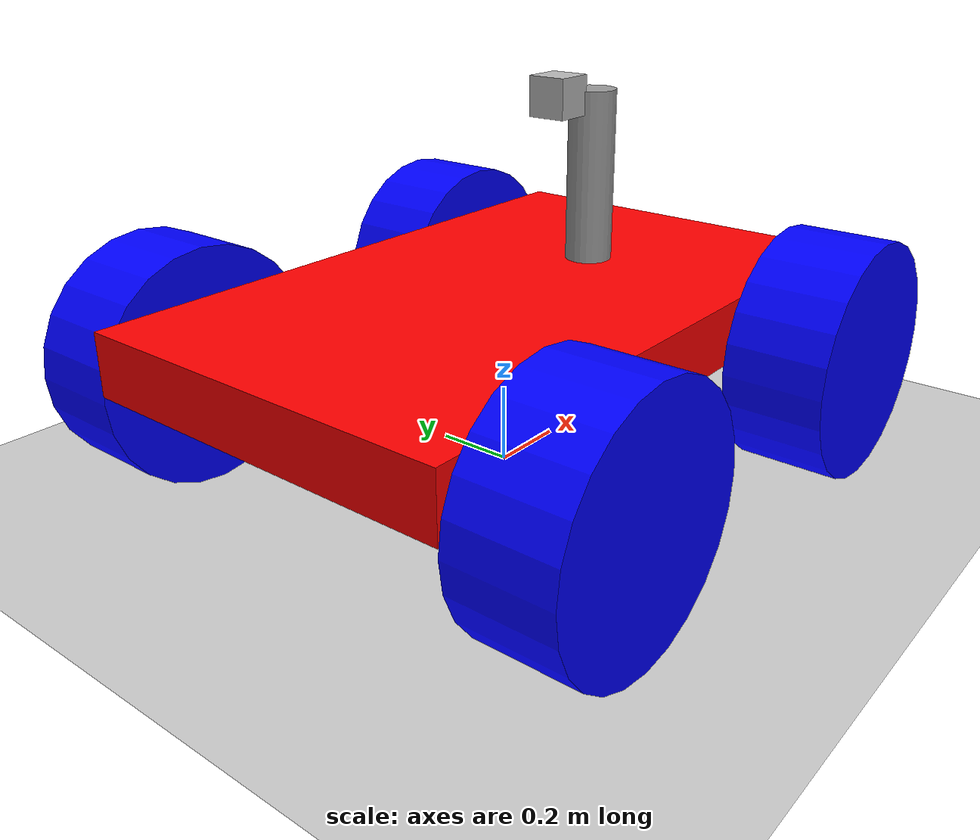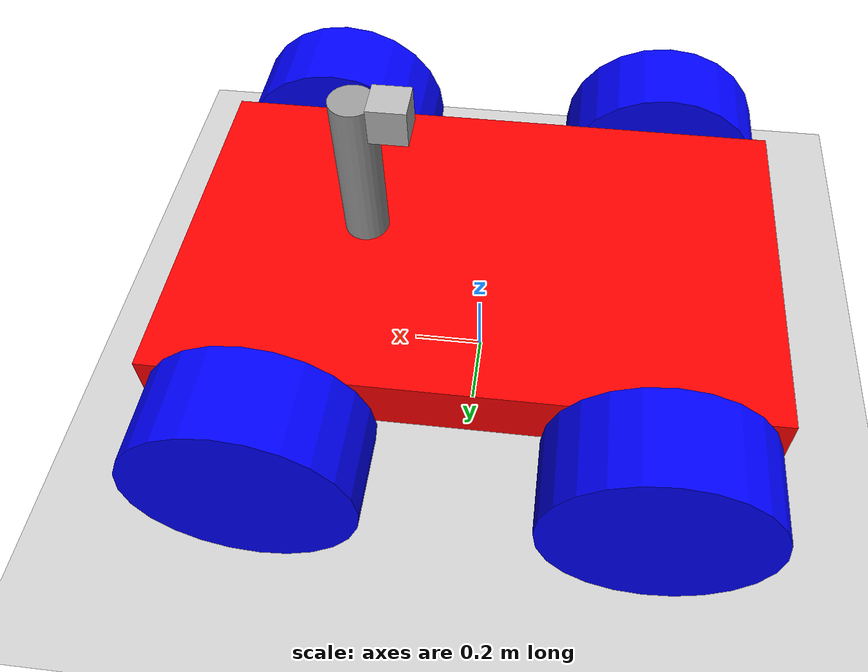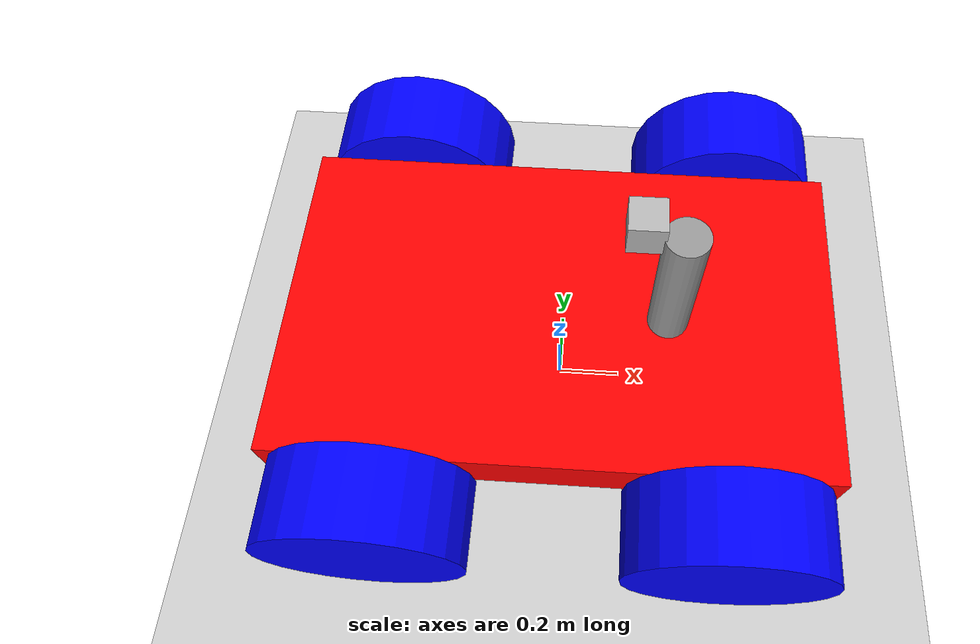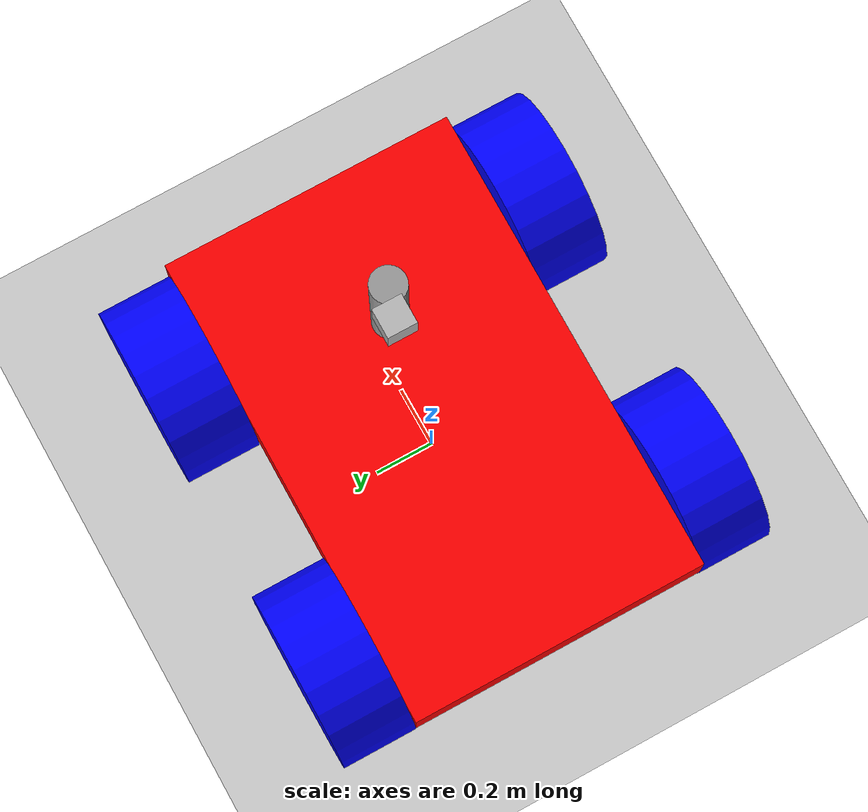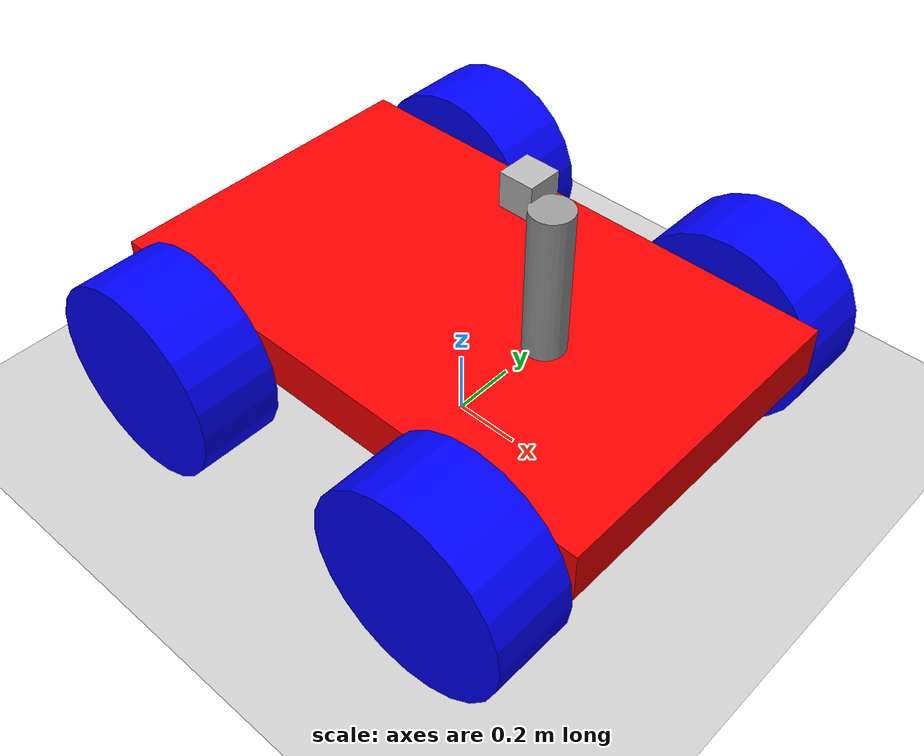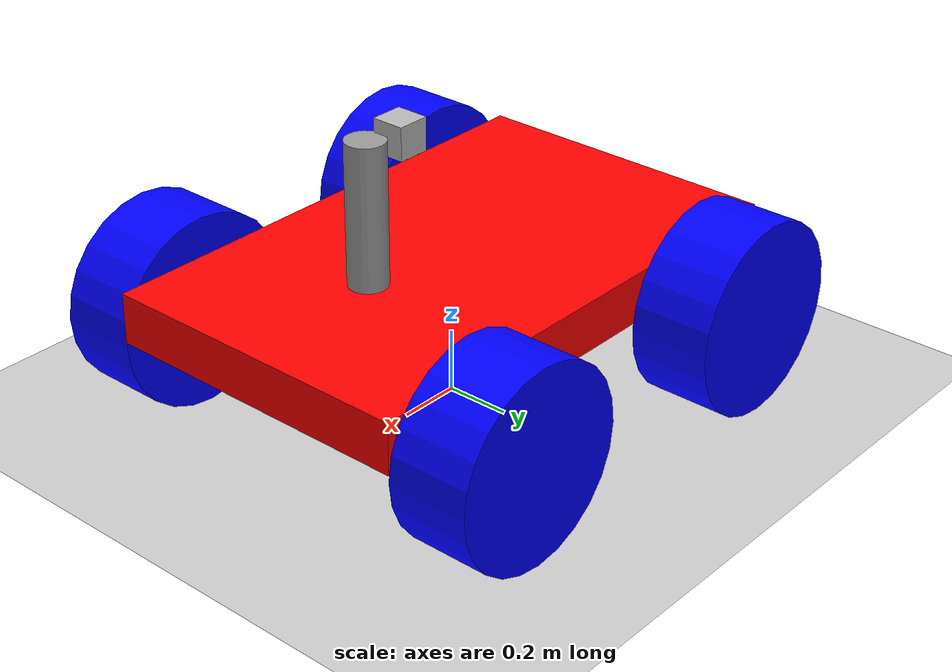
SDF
<?xml version="1.0" ?>
<sdf version="1.8">
    <world name="test_world">
      <physics name="1ms" type="ignored">
    <max_step_size>0.001</max_step_size>
    <real_time_factor>1.0</real_time_factor>
  </physics>
  <plugin
    filename="gz-sim-physics-system"
    name="gz::sim::systems::Physics">
</plugin>
<plugin
    filename="gz-sim-user-commands-system"
    name="gz::sim::systems::UserCommands">
</plugin>
<plugin
    filename="gz-sim-scene-broadcaster-system"
    name="gz::sim::systems::SceneBroadcaster">
</plugin>

<gui fullscreen="0">
  <!-- 3D scene -->
<plugin filename="MinimalScene" name="3D View">
  <gz-gui>
    <title>3D View</title>
    <property type="bool" key="showTitleBar">false</property>
    <property type="string" key="state">docked</property>
  </gz-gui>

  <engine>ogre2</engine>
  <scene>scene</scene>
  <ambient_light>0.4 0.4 0.4</ambient_light>
  <background_color>0.8 0.8 0.8</background_color>
  <camera_pose>-6 0 6 0 0.5 0</camera_pose>
  <camera_clip>
    <near>0.25</near>
    <far>25000</far>
  </camera_clip>
</plugin>
<plugin filename="GzSceneManager" name="Scene Manager">
  <gz-gui>
    <property key="resizable" type="bool">false</property>
    <property key="width" type="double">5</property>
    <property key="height" type="double">5</property>
    <property key="state" type="string">floating</property>
    <property key="showTitleBar" type="bool">false</property>
  </gz-gui>
</plugin>
<plugin filename="WorldControl" name="World control">
    <gz-gui>
        <title>World control</title>
        <property type="bool" key="showTitleBar">false</property>
        <property type="bool" key="resizable">false</property>
        <property type="double" key="height">72</property>
        <property type="double" key="width">121</property>
        <property type="double" key="z">1</property>

        <property type="string" key="state">floating</property>
        <anchors target="3D View">
        <line own="left" target="left"/>
        <line own="bottom" target="bottom"/>
        </anchors>
    </gz-gui>

    <play_pause>true</play_pause>
    <step>true</step>
    <start_paused>true</start_paused>
    <service>/world/world_demo/control</service>
    <stats_topic>/world/world_demo/stats</stats_topic>
</plugin>
<plugin filename="WorldStats" name="World stats">
    <gz-gui>
        <title>World stats</title>
        <property type="bool" key="showTitleBar">false</property>
        <property type="bool" key="resizable">false</property>
        <property type="double" key="height">110</property>
        <property type="double" key="width">290</property>
        <property type="double" key="z">1</property>

        <property type="string" key="state">floating</property>
        <anchors target="3D View">
        <line own="right" target="right"/>
        <line own="bottom" target="bottom"/>
        </anchors>
    </gz-gui>

    <sim_time>true</sim_time>
    <real_time>true</real_time>
    <real_time_factor>true</real_time_factor>
    <iterations>true</iterations>
    <topic>/world/world_demo/stats</topic>

</plugin>
<!-- Entity tree -->
<plugin filename="EntityTree" name="Entity tree">
</plugin>
</gui>
<light type="directional" name="sun">
    <cast_shadows>true</cast_shadows>
    <pose>0 0 10 0 0 0</pose>
    <diffuse>0.8 0.8 0.8 1</diffuse>
    <specular>0.2 0.2 0.2 1</specular>
    <attenuation>
        <range>1000</range>
        <constant>0.9</constant>
        <linear>0.01</linear>
        <quadratic>0.001</quadratic>
    </attenuation>
    <direction>-0.5 0.1 -0.9</direction>
</light>
<include>
    <uri>file:///home/md/Workspaces/gazebo_project/models/ground_plane</uri>
</include>
<include>
    <uri>file:///home/md/Workspaces/gazebo_project/models/four_wheel_car</uri>
</include>
    </world>
</sdf>

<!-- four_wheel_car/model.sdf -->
<sdf version='1.7'>
  <model name='four_wheel_car'>
    <link name='link_0'>
      <inertial>
        <mass>8.20503</mass>
        <inertia>
          <ixx>0.263679</ixx>
          <ixy>0</ixy>
          <ixz>0</ixz>
          <iyy>0.263679</iyy>
          <iyz>0</iyz>
          <izz>0.0148963</izz>
        </inertia>
        <pose>0 0 0 0 -0 0</pose>
      </inertial>
      <pose>0.31891 -0.030085 0.611482 -2e-06 1e-06 0.000383</pose>
      <self_collide>0</self_collide>
      <enable_wind>0</enable_wind>
      <kinematic>0</kinematic>
      <gravity>1</gravity>
      <visual name='visual'>
        <pose>0 0 0 0 -0 0</pose>
        <geometry>
          <cylinder>
            <radius>0.0602579</radius>
            <length>0.612162</length>
          </cylinder>
        </geometry>
        <material>
          <lighting>1</lighting>
          <script>
            <uri>file://media/materials/scripts/gazebo.material</uri>
            <name>Gazebo/Grey</name>
          </script>
          <shader type='pixel'>
            <normal_map>__default__</normal_map>
          </shader>
          <emissive>0 0 0 1</emissive>
        </material>
        <transparency>0</transparency>
        <cast_shadows>1</cast_shadows>
      </visual>
      <collision name='collision'>
        <laser_retro>0</laser_retro>
        <max_contacts>10</max_contacts>
        <pose>0 0 0 0 -0 0</pose>
        <geometry>
          <cylinder>
            <radius>0.060258</radius>
            <length>0.612162</length>
          </cylinder>
        </geometry>
        <surface>
          <friction>
            <ode>
              <mu>1</mu>
              <mu2>1</mu2>
              <fdir1>0 0 0</fdir1>
              <slip1>0</slip1>
              <slip2>0</slip2>
            </ode>
            <torsional>
              <coefficient>1</coefficient>
              <patch_radius>0</patch_radius>
              <surface_radius>0</surface_radius>
              <use_patch_radius>1</use_patch_radius>
              <ode>
                <slip>0</slip>
              </ode>
            </torsional>
          </friction>
          <bounce>
            <restitution_coefficient>0</restitution_coefficient>
            <threshold>1e+06</threshold>
          </bounce>
          <contact>
            <collide_without_contact>0</collide_without_contact>
            <collide_without_contact_bitmask>1</collide_without_contact_bitmask>
            <collide_bitmask>1</collide_bitmask>
            <ode>
              <soft_cfm>0</soft_cfm>
              <soft_erp>0.2</soft_erp>
              <kp>1e+13</kp>
              <kd>1</kd>
              <max_vel>0.01</max_vel>
              <min_depth>0</min_depth>
            </ode>
            <bullet>
              <split_impulse>1</split_impulse>
              <split_impulse_penetration_threshold>-0.01</split_impulse_penetration_threshold>
              <soft_cfm>0</soft_cfm>
              <soft_erp>0.2</soft_erp>
              <kp>1e+13</kp>
              <kd>1</kd>
            </bullet>
          </contact>
        </surface>
      </collision>
    </link>
    <link name='link_1'>
      <inertial>
        <mass>83.0559</mass>
        <inertia>
          <ixx>2.30134</ixx>
          <ixy>0</ixy>
          <ixz>0</ixz>
          <iyy>2.30134</iyy>
          <iyz>0</iyz>
          <izz>3.73751</izz>
        </inertia>
        <pose>0 0 0 0 -0 0</pose>
      </inertial>
      <pose>0.510065 -0.625029 0.3 1.5707 -0 0</pose>
      <gravity>1</gravity>
      <self_collide>0</self_collide>
      <kinematic>0</kinematic>
      <enable_wind>0</enable_wind>
      <visual name='visual'>
        <pose>0 0 0 0 -0 0</pose>
        <geometry>
          <cylinder>
            <radius>0.3</radius>
            <length>0.25</length>
          </cylinder>
        </geometry>
        <material>
          <lighting>1</lighting>
          <script>
            <uri>file://media/materials/scripts/gazebo.material</uri>
            <name>Gazebo/Grey</name>
          </script>
          <shader type='pixel'>
            <normal_map>__default__</normal_map>
          </shader>
          <ambient>0 0 1 0</ambient>
          <diffuse>0.7 0.7 0.7 1</diffuse>
          <specular>0.01 0.01 0.01 1</specular>
          <emissive>0 0 0 1</emissive>
        </material>
        <transparency>0</transparency>
        <cast_shadows>1</cast_shadows>
      </visual>
      <collision name='collision'>
        <laser_retro>0</laser_retro>
        <max_contacts>10</max_contacts>
        <pose>0 0 0 0 -0 0</pose>
        <geometry>
          <cylinder>
            <radius>0.3</radius>
            <length>0.25</length>
          </cylinder>
        </geometry>
        <surface>
          <friction>
            <ode>
              <mu>1</mu>
              <mu2>1</mu2>
              <fdir1>0 0 0</fdir1>
              <slip1>0</slip1>
              <slip2>0</slip2>
            </ode>
            <torsional>
              <coefficient>1</coefficient>
              <patch_radius>0</patch_radius>
              <surface_radius>0</surface_radius>
              <use_patch_radius>1</use_patch_radius>
              <ode>
                <slip>0</slip>
              </ode>
            </torsional>
          </friction>
          <bounce>
            <restitution_coefficient>0</restitution_coefficient>
            <threshold>1e+06</threshold>
          </bounce>
          <contact>
            <collide_without_contact>0</collide_without_contact>
            <collide_without_contact_bitmask>1</collide_without_contact_bitmask>
            <collide_bitmask>1</collide_bitmask>
            <ode>
              <soft_cfm>0</soft_cfm>
              <soft_erp>0.2</soft_erp>
              <kp>1e+13</kp>
              <kd>1</kd>
              <max_vel>0.01</max_vel>
              <min_depth>0</min_depth>
            </ode>
            <bullet>
              <split_impulse>1</split_impulse>
              <split_impulse_penetration_threshold>-0.01</split_impulse_penetration_threshold>
              <soft_cfm>0</soft_cfm>
              <soft_erp>0.2</soft_erp>
              <kp>1e+13</kp>
              <kd>1</kd>
            </bullet>
          </contact>
        </surface>
      </collision>
    </link>
    <link name='link_1_clone'>
      <inertial>
        <mass>83.0559</mass>
        <inertia>
          <ixx>2.30134</ixx>
          <ixy>0</ixy>
          <ixz>0</ixz>
          <iyy>2.30134</iyy>
          <iyz>0</iyz>
          <izz>3.73751</izz>
        </inertia>
        <pose>0 0 0 0 -0 0</pose>
      </inertial>
      <pose>0.510065 0.625029 0.3 1.5707 -0 0</pose>
      <gravity>1</gravity>
      <self_collide>0</self_collide>
      <kinematic>0</kinematic>
      <enable_wind>0</enable_wind>
      <visual name='visual'>
        <pose>0 0 0 0 -0 0</pose>
        <geometry>
          <cylinder>
            <radius>0.3</radius>
            <length>0.25</length>
          </cylinder>
        </geometry>
        <material>
          <lighting>1</lighting>
          <script>
            <uri>file://media/materials/scripts/gazebo.material</uri>
            <name>Gazebo/Grey</name>
          </script>
          <shader type='pixel'>
            <normal_map>__default__</normal_map>
          </shader>
          <ambient>0 0 1 0</ambient>
          <diffuse>0.7 0.7 0.7 1</diffuse>
          <specular>0.01 0.01 0.01 1</specular>
          <emissive>0 0 0 1</emissive>
        </material>
        <transparency>0</transparency>
        <cast_shadows>1</cast_shadows>
      </visual>
      <collision name='collision'>
        <laser_retro>0</laser_retro>
        <max_contacts>10</max_contacts>
        <pose>0 0 0 0 -0 0</pose>
        <geometry>
          <cylinder>
            <radius>0.3</radius>
            <length>0.25</length>
          </cylinder>
        </geometry>
        <surface>
          <friction>
            <ode>
              <mu>1</mu>
              <mu2>1</mu2>
              <fdir1>0 0 0</fdir1>
              <slip1>0</slip1>
              <slip2>0</slip2>
            </ode>
            <torsional>
              <coefficient>1</coefficient>
              <patch_radius>0</patch_radius>
              <surface_radius>0</surface_radius>
              <use_patch_radius>1</use_patch_radius>
              <ode>
                <slip>0</slip>
              </ode>
            </torsional>
          </friction>
          <bounce>
            <restitution_coefficient>0</restitution_coefficient>
            <threshold>1e+06</threshold>
          </bounce>
          <contact>
            <collide_without_contact>0</collide_without_contact>
            <collide_without_contact_bitmask>1</collide_without_contact_bitmask>
            <collide_bitmask>1</collide_bitmask>
            <ode>
              <soft_cfm>0</soft_cfm>
              <soft_erp>0.2</soft_erp>
              <kp>1e+13</kp>
              <kd>1</kd>
              <max_vel>0.01</max_vel>
              <min_depth>0</min_depth>
            </ode>
            <bullet>
              <split_impulse>1</split_impulse>
              <split_impulse_penetration_threshold>-0.01</split_impulse_penetration_threshold>
              <soft_cfm>0</soft_cfm>
              <soft_erp>0.2</soft_erp>
              <kp>1e+13</kp>
              <kd>1</kd>
            </bullet>
          </contact>
        </surface>
      </collision>
    </link>
    <link name='link_1_clone_0'>
      <inertial>
        <mass>83.0559</mass>
        <inertia>
          <ixx>2.30134</ixx>
          <ixy>0</ixy>
          <ixz>0</ixz>
          <iyy>2.30134</iyy>
          <iyz>0</iyz>
          <izz>3.73751</izz>
        </inertia>
        <pose>0 0 0 0 -0 0</pose>
      </inertial>
      <pose>-0.510065 -0.625029 0.3 1.5707 -0 0</pose>
      <gravity>1</gravity>
      <self_collide>0</self_collide>
      <kinematic>0</kinematic>
      <enable_wind>0</enable_wind>
      <visual name='visual'>
        <pose>0 0 0 0 -0 0</pose>
        <geometry>
          <cylinder>
            <radius>0.3</radius>
            <length>0.25</length>
          </cylinder>
        </geometry>
        <material>
          <lighting>1</lighting>
          <script>
            <uri>file://media/materials/scripts/gazebo.material</uri>
            <name>Gazebo/Grey</name>
          </script>
          <shader type='pixel'>
            <normal_map>__default__</normal_map>
          </shader>
          <ambient>0 0 1 0</ambient>
          <diffuse>0.7 0.7 0.7 1</diffuse>
          <specular>0.01 0.01 0.01 1</specular>
          <emissive>0 0 0 1</emissive>
        </material>
        <transparency>0</transparency>
        <cast_shadows>1</cast_shadows>
      </visual>
      <collision name='collision'>
        <laser_retro>0</laser_retro>
        <max_contacts>10</max_contacts>
        <pose>0 0 0 0 -0 0</pose>
        <geometry>
          <cylinder>
            <radius>0.3</radius>
            <length>0.25</length>
          </cylinder>
        </geometry>
        <surface>
          <friction>
            <ode>
              <mu>1</mu>
              <mu2>1</mu2>
              <fdir1>0 0 0</fdir1>
              <slip1>0</slip1>
              <slip2>0</slip2>
            </ode>
            <torsional>
              <coefficient>1</coefficient>
              <patch_radius>0</patch_radius>
              <surface_radius>0</surface_radius>
              <use_patch_radius>1</use_patch_radius>
              <ode>
                <slip>0</slip>
              </ode>
            </torsional>
          </friction>
          <bounce>
            <restitution_coefficient>0</restitution_coefficient>
            <threshold>1e+06</threshold>
          </bounce>
          <contact>
            <collide_without_contact>0</collide_without_contact>
            <collide_without_contact_bitmask>1</collide_without_contact_bitmask>
            <collide_bitmask>1</collide_bitmask>
            <ode>
              <soft_cfm>0</soft_cfm>
              <soft_erp>0.2</soft_erp>
              <kp>1e+13</kp>
              <kd>1</kd>
              <max_vel>0.01</max_vel>
              <min_depth>0</min_depth>
            </ode>
            <bullet>
              <split_impulse>1</split_impulse>
              <split_impulse_penetration_threshold>-0.01</split_impulse_penetration_threshold>
              <soft_cfm>0</soft_cfm>
              <soft_erp>0.2</soft_erp>
              <kp>1e+13</kp>
              <kd>1</kd>
            </bullet>
          </contact>
        </surface>
      </collision>
    </link>
    <link name='link_1_clone_clone'>
      <inertial>
        <mass>83.0559</mass>
        <inertia>
          <ixx>2.30134</ixx>
          <ixy>0</ixy>
          <ixz>0</ixz>
          <iyy>2.30134</iyy>
          <iyz>0</iyz>
          <izz>3.73751</izz>
        </inertia>
        <pose>0 0 0 0 -0 0</pose>
      </inertial>
      <pose>-0.510065 0.625029 0.3 1.5707 -0 0</pose>
      <gravity>1</gravity>
      <self_collide>0</self_collide>
      <kinematic>0</kinematic>
      <enable_wind>0</enable_wind>
      <visual name='visual'>
        <pose>0 0 0 0 -0 0</pose>
        <geometry>
          <cylinder>
            <radius>0.3</radius>
            <length>0.25</length>
          </cylinder>
        </geometry>
        <material>
          <lighting>1</lighting>
          <script>
            <uri>file://media/materials/scripts/gazebo.material</uri>
            <name>Gazebo/Grey</name>
          </script>
          <shader type='pixel'>
            <normal_map>__default__</normal_map>
          </shader>
          <ambient>0 0 1 0</ambient>
          <diffuse>0.7 0.7 0.7 1</diffuse>
          <specular>0.01 0.01 0.01 1</specular>
          <emissive>0 0 0 1</emissive>
        </material>
        <transparency>0</transparency>
        <cast_shadows>1</cast_shadows>
      </visual>
      <collision name='collision'>
        <laser_retro>0</laser_retro>
        <max_contacts>10</max_contacts>
        <pose>0 0 0 0 -0 0</pose>
        <geometry>
          <cylinder>
            <radius>0.3</radius>
            <length>0.25</length>
          </cylinder>
        </geometry>
        <surface>
          <friction>
            <ode>
              <mu>1</mu>
              <mu2>1</mu2>
              <fdir1>0 0 0</fdir1>
              <slip1>0</slip1>
              <slip2>0</slip2>
            </ode>
            <torsional>
              <coefficient>1</coefficient>
              <patch_radius>0</patch_radius>
              <surface_radius>0</surface_radius>
              <use_patch_radius>1</use_patch_radius>
              <ode>
                <slip>0</slip>
              </ode>
            </torsional>
          </friction>
          <bounce>
            <restitution_coefficient>0</restitution_coefficient>
            <threshold>1e+06</threshold>
          </bounce>
          <contact>
            <collide_without_contact>0</collide_without_contact>
            <collide_without_contact_bitmask>1</collide_without_contact_bitmask>
            <collide_bitmask>1</collide_bitmask>
            <ode>
              <soft_cfm>0</soft_cfm>
              <soft_erp>0.2</soft_erp>
              <kp>1e+13</kp>
              <kd>1</kd>
              <max_vel>0.01</max_vel>
              <min_depth>0</min_depth>
            </ode>
            <bullet>
              <split_impulse>1</split_impulse>
              <split_impulse_penetration_threshold>-0.01</split_impulse_penetration_threshold>
              <soft_cfm>0</soft_cfm>
              <soft_erp>0.2</soft_erp>
              <kp>1e+13</kp>
              <kd>1</kd>
            </bullet>
          </contact>
        </surface>
      </collision>
    </link>
    <link name='link_3'>
      <inertial>
        <mass>298.377</mass>
        <inertia>
          <ixx>25.4756</ixx>
          <ixy>0</ixy>
          <ixz>0</ixz>
          <iyy>65.8763</iyy>
          <iyz>0</iyz>
          <izz>90.1302</izz>
        </inertia>
        <pose>0 0 0 0 -0 0</pose>
      </inertial>
      <pose>-0 0 0.4 0 -0 0</pose>
      <self_collide>0</self_collide>
      <enable_wind>0</enable_wind>
      <kinematic>0</kinematic>
      <gravity>1</gravity>
      <visual name='visual'>
        <pose>0 0 0 0 -0 0</pose>
        <geometry>
          <box>
            <size>1.62013 1 0.156739</size>
          </box>
        </geometry>
        <material>
          <lighting>1</lighting>
          <script>
            <uri>file://media/materials/scripts/gazebo.material</uri>
            <name>Gazebo/Grey</name>
          </script>
          <shader type='pixel'>
            <normal_map>__default__</normal_map>
          </shader>
          <ambient>1 0 0 0</ambient>
          <diffuse>0.7 0.7 0.7 1</diffuse>
          <specular>0.01 0.01 0.01 1</specular>
          <emissive>0 0 0 1</emissive>
        </material>
        <transparency>0</transparency>
        <cast_shadows>1</cast_shadows>
      </visual>
      <collision name='collision'>
        <laser_retro>0</laser_retro>
        <max_contacts>10</max_contacts>
        <pose>0 0 0 0 -0 0</pose>
        <geometry>
          <box>
            <size>1.62013 1 0.156739</size>
          </box>
        </geometry>
        <surface>
          <friction>
            <ode>
              <mu>1</mu>
              <mu2>1</mu2>
              <fdir1>0 0 0</fdir1>
              <slip1>0</slip1>
              <slip2>0</slip2>
            </ode>
            <torsional>
              <coefficient>1</coefficient>
              <patch_radius>0</patch_radius>
              <surface_radius>0</surface_radius>
              <use_patch_radius>1</use_patch_radius>
              <ode>
                <slip>0</slip>
              </ode>
            </torsional>
          </friction>
          <bounce>
            <restitution_coefficient>0</restitution_coefficient>
            <threshold>1e+06</threshold>
          </bounce>
          <contact>
            <collide_without_contact>0</collide_without_contact>
            <collide_without_contact_bitmask>1</collide_without_contact_bitmask>
            <collide_bitmask>1</collide_bitmask>
            <ode>
              <soft_cfm>0</soft_cfm>
              <soft_erp>0.2</soft_erp>
              <kp>1e+13</kp>
              <kd>1</kd>
              <max_vel>0.01</max_vel>
              <min_depth>0</min_depth>
            </ode>
            <bullet>
              <split_impulse>1</split_impulse>
              <split_impulse_penetration_threshold>-0.01</split_impulse_penetration_threshold>
              <soft_cfm>0</soft_cfm>
              <soft_erp>0.2</soft_erp>
              <kp>1e+13</kp>
              <kd>1</kd>
            </bullet>
          </contact>
        </surface>
      </collision>
    </link>
    <model name='camera'>
      <pose>0.217084 0.003685 0.909043 0 -0 0</pose>
      <link name='link'>
        <inertial>
          <mass>0.1</mass>
          <inertia>
            <ixx>0.000166667</ixx>
            <iyy>0.000166667</iyy>
            <izz>0.000166667</izz>
            <ixy>0</ixy>
            <ixz>0</ixz>
            <iyz>0</iyz>
          </inertia>
          <pose>0 0 0 0 -0 0</pose>
        </inertial>
        <collision name='collision'>
          <geometry>
            <box>
              <size>0.1 0.1 0.1</size>
            </box>
          </geometry>
          <max_contacts>10</max_contacts>
          <surface>
            <contact>
              <ode/>
            </contact>
            <bounce/>
            <friction>
              <torsional>
                <ode/>
              </torsional>
              <ode/>
            </friction>
          </surface>
        </collision>
        <visual name='visual'>
          <geometry>
            <box>
              <size>0.1 0.1 0.1</size>
            </box>
          </geometry>
        </visual>
        <sensor name='camera' type='camera'>
          <camera>
            <horizontal_fov>1.047</horizontal_fov>
            <image>
              <width>320</width>
              <height>240</height>
            </image>
            <clip>
              <near>0.1</near>
              <far>100</far>
            </clip>
          </camera>
          <always_on>1</always_on>
          <update_rate>30</update_rate>
          <visualize>1</visualize>
        </sensor>
        <self_collide>0</self_collide>
        <enable_wind>0</enable_wind>
        <kinematic>0</kinematic>
      </link>
    </model>
    <joint name='joint_rod_camera' type='revolute'>
      <parent>link_0</parent>
      <child>camera::link</child>
      <pose>0 0 0 0 -0 0</pose>
      <axis>
        <xyz>0 0 1</xyz>
        <limit>
          <lower>-1.79769e+308</lower>
          <upper>1.79769e+308</upper>
          <effort>-1</effort>
          <velocity>-1</velocity>
        </limit>
        <dynamics>
          <spring_reference>0</spring_reference>
          <spring_stiffness>0</spring_stiffness>
          <damping>0</damping>
          <friction>0</friction>
        </dynamics>
      </axis>
      <physics>
        <ode>
          <limit>
            <cfm>0</cfm>
            <erp>0.2</erp>
          </limit>
          <suspension>
            <cfm>0</cfm>
            <erp>0.2</erp>
          </suspension>
        </ode>
      </physics>
    </joint>
    <joint name='left_front_joint' type='revolute'>
      <parent>link_3</parent>
      <child>link_1_clone</child>
      <pose>0 0 0 0 -0 0</pose>
      <axis>
        <xyz>0 0 1</xyz>
        <limit>
          <lower>-1.79769e+308</lower>
          <upper>1.79769e+308</upper>
          <effort>-1</effort>
          <velocity>-1</velocity>
        </limit>
        <dynamics>
          <spring_reference>0</spring_reference>
          <spring_stiffness>0</spring_stiffness>
          <damping>0</damping>
          <friction>0</friction>
        </dynamics>
      </axis>
      <physics>
        <ode>
          <limit>
            <cfm>0</cfm>
            <erp>0.2</erp>
          </limit>
          <suspension>
            <cfm>0</cfm>
            <erp>0.2</erp>
          </suspension>
        </ode>
      </physics>
    </joint>
    <joint name='left_rear_joint' type='revolute'>
      <parent>link_3</parent>
      <child>link_1_clone_clone</child>
      <pose>0 0 0 0 -0 0</pose>
      <axis>
        <xyz>0 0 1</xyz>
        <limit>
          <lower>-1.79769e+308</lower>
          <upper>1.79769e+308</upper>
          <effort>-1</effort>
          <velocity>-1</velocity>
        </limit>
        <dynamics>
          <spring_reference>0</spring_reference>
          <spring_stiffness>0</spring_stiffness>
          <damping>0</damping>
          <friction>0</friction>
        </dynamics>
      </axis>
      <physics>
        <ode>
          <limit>
            <cfm>0</cfm>
            <erp>0.2</erp>
          </limit>
          <suspension>
            <cfm>0</cfm>
            <erp>0.2</erp>
          </suspension>
        </ode>
      </physics>
    </joint>
    <joint name='right_front' type='revolute'>
      <parent>link_3</parent>
      <child>link_1</child>
      <pose>0 0 0 0 -0 0</pose>
      <axis>
        <xyz>0 0 1</xyz>
        <limit>
          <lower>-1.79769e+308</lower>
          <upper>1.79769e+308</upper>
          <effort>-1</effort>
          <velocity>-1</velocity>
        </limit>
        <dynamics>
          <spring_reference>0</spring_reference>
          <spring_stiffness>0</spring_stiffness>
          <damping>0</damping>
          <friction>0</friction>
        </dynamics>
      </axis>
      <physics>
        <ode>
          <limit>
            <cfm>0</cfm>
            <erp>0.2</erp>
          </limit>
          <suspension>
            <cfm>0</cfm>
            <erp>0.2</erp>
          </suspension>
        </ode>
      </physics>
    </joint>
    <joint name='right_rear_joint' type='revolute'>
      <parent>link_3</parent>
      <child>link_1_clone_0</child>
      <pose>0 0 0 0 -0 0</pose>
      <axis>
        <xyz>0 0 1</xyz>
        <limit>
          <lower>-1.79769e+308</lower>
          <upper>1.79769e+308</upper>
          <effort>-1</effort>
          <velocity>-1</velocity>
        </limit>
        <dynamics>
          <spring_reference>0</spring_reference>
          <spring_stiffness>0</spring_stiffness>
          <damping>0</damping>
          <friction>0</friction>
        </dynamics>
      </axis>
      <physics>
        <ode>
          <limit>
            <cfm>0</cfm>
            <erp>0.2</erp>
          </limit>
          <suspension>
            <cfm>0</cfm>
            <erp>0.2</erp>
          </suspension>
        </ode>
      </physics>
    </joint>
    <joint name='rod_chasis_joint' type='fixed'>
      <parent>link_3</parent>
      <child>link_0</child>
      <pose>0 0 0 0 -0 0</pose>
      <physics>
        <ode>
          <limit>
            <cfm>0</cfm>
            <erp>0.2</erp>
          </limit>
          <suspension>
            <cfm>0</cfm>
            <erp>0.2</erp>
          </suspension>
        </ode>
      </physics>
    </joint>
    <static>0</static>
    <allow_auto_disable>0</allow_auto_disable>
    <plugin name='follower' filename='LibFollowerPlugin.so'/>
  </model>
</sdf>
